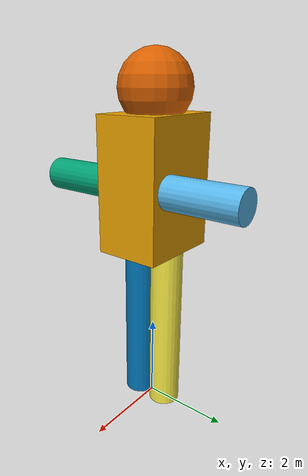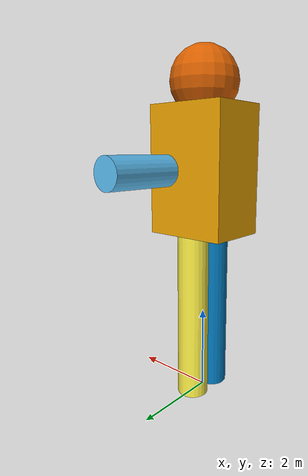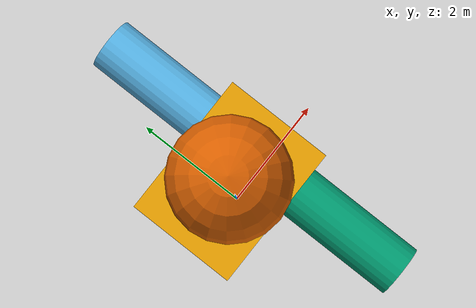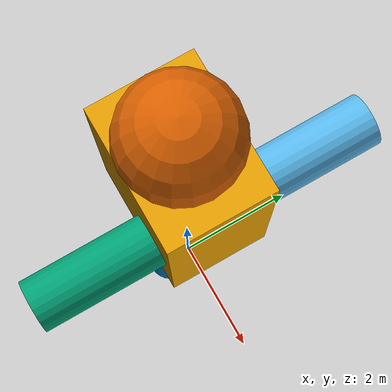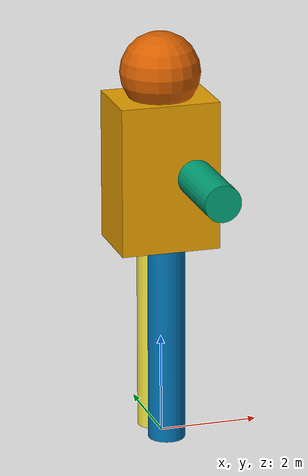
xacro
<?xml version="1.0"?>
<robot name="demo1" xmlns:xacro="http://www.ros.org/wiki/xacro">

    <xacro:property name="radius" value="0.37"/>
    <xacro:property name="leg_length" value="4"/>
    <xacro:property name="arm_length" value="2"/>

    <!-- 人形主体躯干 -->
    <link name="human_main">
        <visual>
        <origin xyz="0 0 5.5" rpy="0 0 0"/>     <!--离地高度4，因为减去了1.5,质心高度-->
            <geometry>
                <box size=" 2 1.5 3"/>
            </geometry>
        </visual>
        <collision>
            <geometry>
                <box size=" 2 1.5 3"/>
            </geometry>
        </collision>
    </link>
    <!-- 左臂 -->
    <link name="left_arm">
        <visual>
        <origin xyz="-0.5 0.75 5.5" rpy="1.5708 0 0"/>
            <geometry>
                <cylinder length="${arm_length}" radius="${radius}"/>
            </geometry>
        </visual>
        <collision>
            <geometry>
                <cylinder length="${arm_length}" radius="${radius}"/>
            </geometry>
        </collision>
    </link>
    <!-- 右臂 -->
    <link name="right_arm">
        <visual>
        <origin xyz="-0.5 -0.75 5.5" rpy="1.5708 0 0"/>
            <geometry>
                <cylinder length="${arm_length}" radius="${radius}"/>
            </geometry>
        </visual>
        <collision>
            <geometry>
                <cylinder length="${arm_length}" radius="${radius}"/>
            </geometry>
        </collision>
    </link>
    <!-- 左腿 -->
    <link name="left_leg">
        <visual>
        <origin xyz="0 0 2" rpy="0 0 0"/>
            <geometry>
                <cylinder length="${leg_length}" radius="${radius}"/>
            </geometry>
        </visual>
        <collision>
            <geometry>
                <cylinder length="${leg_length}" radius="${radius}"/>
            </geometry>
        </collision>
    </link>
    <!-- 右腿 -->
    <link name="right_leg">
        <visual>
        <origin xyz="0 0 2" rpy="0 0 0"/>
            <geometry>
                <cylinder length="${leg_length}" radius="${radius}"/>
            </geometry>
        </visual>
        <collision>
            <geometry>
                <cylinder length="${leg_length}" radius="${radius}"/>
            </geometry>
        </collision>
    </link>
    <link name="head">
        <visual>
        <origin xyz="0 0 4.5" rpy="0 0 0"/>
            <geometry>
                <sphere radius="0.8"/>
            </geometry>
        </visual>
        <collision>
            <geometry>
                <sphere radius="1"/>
            </geometry>
        </collision>
    </link>
    <!-- 机器人通过joint 连接到人体上 -->
    <joint name="left_arm_joint" type="fixed">
        <parent link="human_main"/>
        <child link="left_arm"/>
        <origin xyz="1 0.75 0" rpy="0 0 0"/>
    </joint>
    <joint name="right_arm_joint" type="fixed">
        <parent link="human_main"/>
        <child link="right_arm"/>
        <origin xyz="1 -0.75 0" rpy="0 0 0"/>
        <axis xyz="0 1 0"/>
    </joint>
    <joint name="left_leg_joint" type="fixed">
        <parent link="human_main"/>
        <child link="left_leg"/>
        <origin xyz="0 0.38 0" rpy="0 0 0"/>
    </joint>
    <joint name="right_leg_joint" type="fixed">
        <parent link="human_main"/>
        <child link="right_leg"/>
        <origin xyz="0 -0.38 0" rpy="0 0 0"/>
    </joint>
    <joint name="head_joint" type="fixed">
        <parent link="human_main"/>
        <child link="head"/>
        <origin xyz="0 0 3" rpy="0 0 0"/>
    </joint>
</robot>
